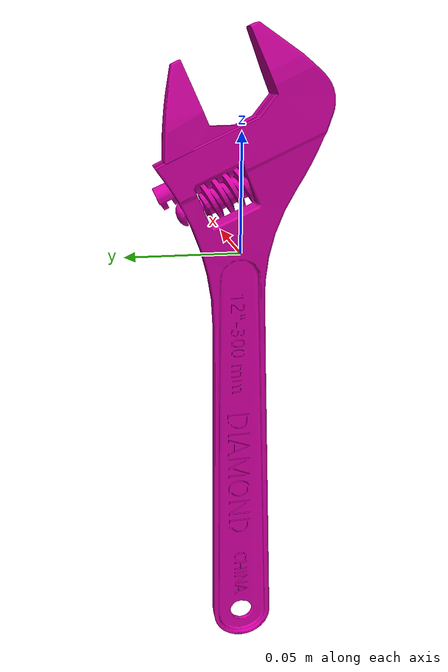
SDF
<?xml version="1.0"?>
<sdf version="1.7">
  <model name="adjustable_wrench_300mm_bright">
    <pose>0 0 0 0 0 0</pose>
    <static>false</static>
    <link name="link">
      <!-- link frame = tool CoM; Z = long axis (+ toward tool end), X = forward, Y = Z x X -->
      <inertial>
        <pose>0 0 0 0 0 0</pose>
        <mass>0.496741</mass>
        <inertia>
          <ixx>2.883835e-03</ixx>
          <ixy>1.912564e-10</ixy>
          <ixz>5.427258e-10</ixz>
          <iyy>2.758823e-03</iyy>
          <iyz>5.482456e-08</iyz>
          <izz>1.387815e-04</izz>
        </inertia>
      </inertial>
      <collision name="collision">
        <geometry>
          <mesh>
            <uri>model://adjustable_wrench_300mm/meshes/adjustable_wrench_300mm.dae</uri>
          </mesh>
        </geometry>
      </collision>
      <visual name="visual">
        <geometry>
          <mesh>
            <uri>model://adjustable_wrench_300mm/meshes/adjustable_wrench_300mm.dae</uri>
          </mesh>
        </geometry>
        <material>
          <ambient>0.369 0.000 0.282 1.0</ambient>
          <diffuse>0.820 0.000 0.627 1.0</diffuse>
          <specular>0.85 0.85 0.85 1.0</specular>
          <emissive>0 0 0 1.0</emissive>
        </material>
      </visual>
    </link>
  </model>
</sdf>
